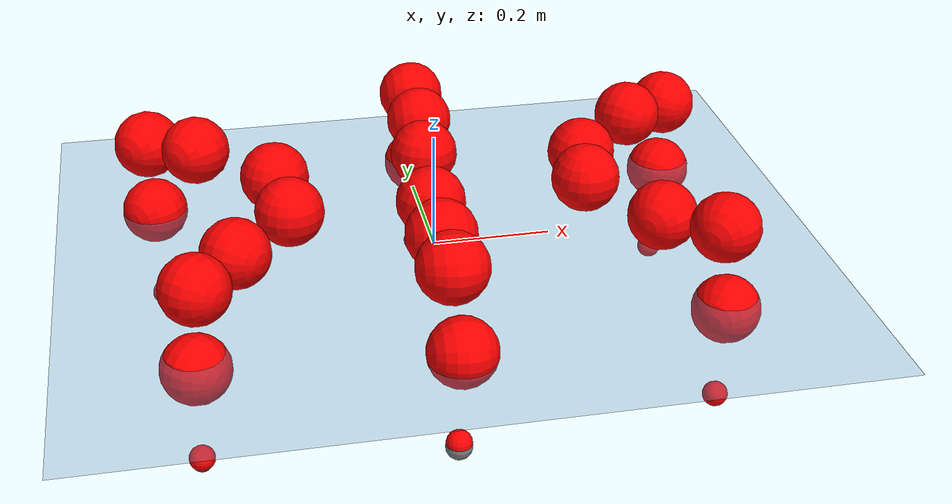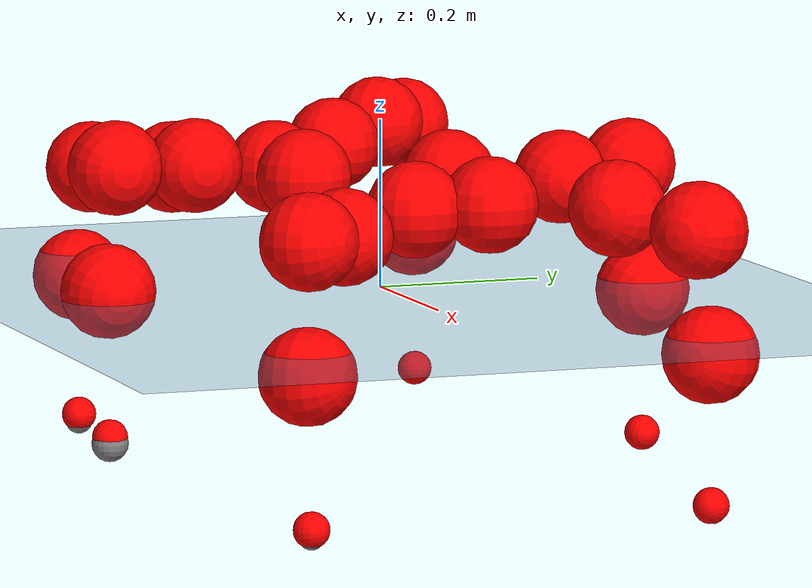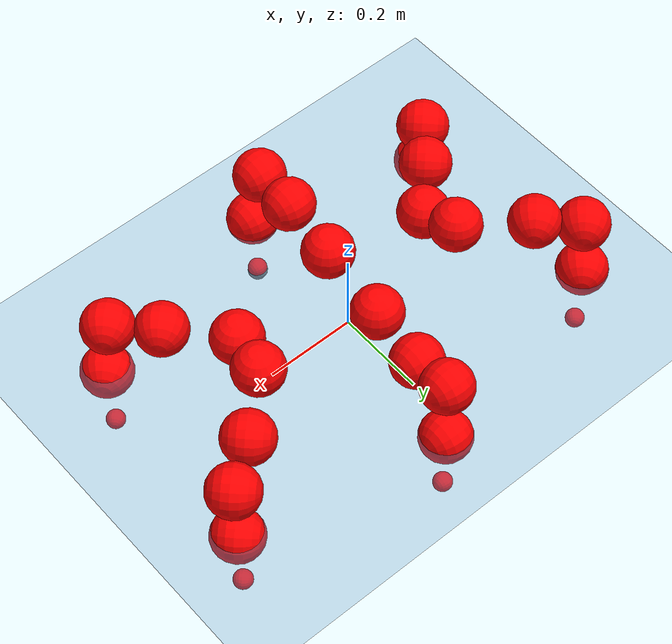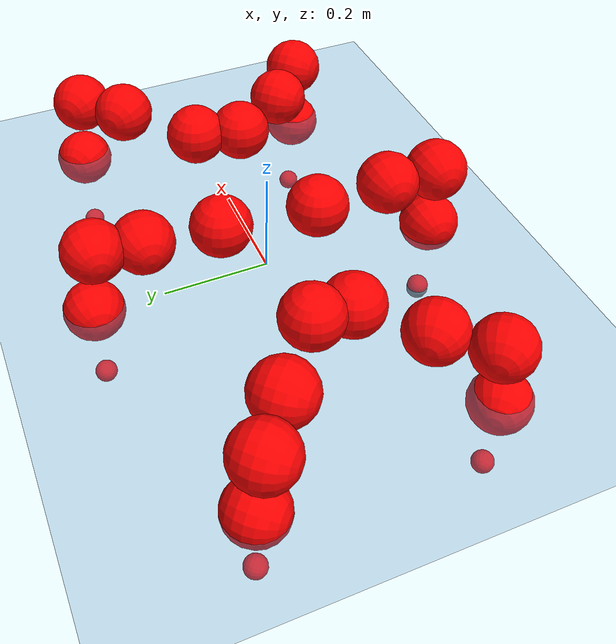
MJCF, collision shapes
<mujoco model="Golem">
  <compiler angle="radian" assetdir="assets" balanceinertia="true" inertiafromgeom="false"/>

  <option timestep="0.005" density="1.2" viscosity="2e-05"/>

  <size nkey="1"/>

  <visual>
    <quality shadowsize="8192"/>
    <map shadowclip="0.5"/>
  </visual>

  <default>
    <default class="/">
      <joint armature="0.01" damping="0.01" frictionloss="0.01"/>
      <geom contype="0" conaffinity="0" group="1" solref="-1000 -80"/>
      <site size="0.01 0.005 0.005" group="5"/>
      <general forcelimited="true" biastype="affine" gainprm="25" biasprm="0 -25 -0.5"/>
      <default class="visual">
        <geom type="mesh" group="2"/>
      </default>
      <default class="collision">
        <geom group="3"/>
      </default>
      <default class="foot">
        <geom size="0.01 0 0" condim="6" group="4" priority="1" solimp="0.015 1 0.01"/>
      </default>
      <default class="reward_collision_sphere">
        <geom group="5" rgba="1 0 0 1"/>
      </default>
    </default>
  </default>

  <asset>
    <texture type="skybox" colorspace="auto" name="//unnamed_texture_0" builtin="gradient" rgb1="0.95 0.95 0.95" rgb2="0.95 0.95 0.95" width="100" height="600"/>
    <texture type="2d" colorspace="auto" name="texplane" builtin="checker" rgb1="0.345 0.575 0.748" rgb2="0.345 0.575 0.748" markrgb="1 1 1" width="512" height="512"/>
    <material name="MatPlane" class="/" texture="texplane" texuniform="true" texrepeat="2 2" specular="0.9"/>
    <mesh name="body" class="/" file="body.stl" scale="0.001 0.001 0.001"/>
    <mesh name="coxa" class="/" file="coxa.stl" scale="0.001 0.001 0.001"/>
    <mesh name="femur" class="/" file="femur.stl" scale="0.001 0.001 0.001"/>
    <mesh name="tibia" class="/" file="tibia.stl" scale="0.001 0.001 0.001"/>
    <mesh name="tarsus" class="/" file="tarsus.stl" scale="0.001 0.001 0.001"/>
  </asset>

  <worldbody>
    <geom name="floor" class="/" size="100 100 0.125" type="plane" group="0" material="MatPlane"/>
    <light name="toplight_shadow" class="/" pos="0 0 5" dir="0.0990148 0.0990148 -0.990148" type="directional" ambient="0.04 0.04 0.04" diffuse="0.55 0.55 0.55" specular="0.12 0.12 0.12"/>
    <light name="toplight_fill" class="/" pos="0 0 5" dir="0.0990148 0.0990148 -0.990148" type="directional" castshadow="false" ambient="0.04 0.04 0.04" diffuse="0.3 0.3 0.3" specular="0.08 0.08 0.08"/>
    <body name="trunk" pos="-0.00549801 -0.00058061 0.0156186" quat="0.999988 0.000985557 0.00236095 -0.00415149">
      <inertial pos="0.000607775 -0.0134835 0.0138778" quat="0.998976 0.0358771 -0.0271185 -0.00484418" mass="8.15438" diaginertia="0.0937077 0.00672384 0.100194"/>
      <joint name="//unnamed_joint_0" type="free"/>
      <geom name="//unnamed_geom_1" class="/" pos="0 0 0.107644" quat="1 0 0 0" type="mesh" rgba="0.9 0.9 0.9 1" mesh="body"/>
      <site name="imu" class="/" pos="0.259368 -0.00122054 0.0969792" size="0.0141706"/>
      <camera name="track" class="/" pos="0 -1.87615 0" quat="0.707107 0.707107 0 0" mode="trackcom"/>
      <camera name="ego_camera" class="/" pos="0.212053 0 0.168194" quat="-0.5 -0.5 0.5 0.5"/>
      <body name="coxa_RR" pos="-0.275041 -0.0853726 0.0998825" quat="0.387083 -0.00717789 -0.00116089 -0.922016">
        <inertial pos="0.0167915 0.0113293 -0.00385721" quat="0.997405 -0.00833788 -0.0190539 -0.0689251" mass="0.519283" diaginertia="0.114407 0.00709215 0.167741"/>
        <joint name="coxa_joint_RR" class="/" pos="0 0 0" axis="0.0233656 0.000902846 -0.999727" range="-2.94435 3.02834" armature="0.0191284" damping="0" frictionloss="0.00392815"/>
        <geom name="//unnamed_geom_2" class="/" type="mesh" rgba="0.2 0.2 0.2 1" mesh="coxa"/>
        <geom name="//unnamed_geom_3" class="reward_collision_sphere" size="0.0566825" pos="-0.0489353 0 0"/>
        <body name="femur_RR" pos="0.0882303 0.00302436 -0.0102234" quat="0.50009 -0.50018 0.499798 0.499933">
          <inertial pos="0.00336335 0.00883377 -0.0155121" quat="0.999999 -0.000568477 0.000894309 -0.000463431" mass="0.543425" diaginertia="0.110029 0.00701817 0.15595"/>
          <joint name="femur_joint_RR" class="/" pos="0 0 0" axis="0.070415 -0.0162537 -0.997385" stiffness="0.0313382" range="-3.28582 3.16299" armature="0.020803" damping="0.014148" frictionloss="0.0195772"/>
          <geom name="//unnamed_geom_4" class="/" type="mesh" rgba="0.9 0.9 0.9 1" mesh="femur"/>
          <geom name="//unnamed_geom_5" class="reward_collision_sphere" size="0.0566825"/>
          <body name="tibia_RR" pos="0.00621727 -0.106515 0.0115143" quat="-0.000110434 1 0.000230924 -0.000129588">
            <inertial pos="0.00958052 -0.014606 0.015595" quat="0.997328 0.040687 0.0571631 0.0203512" mass="0.670105" diaginertia="0.152995 0.00795295 0.140739"/>
            <joint name="tibia_joint_RR" class="/" pos="0 0 0" axis="-0.0197857 -0.0060037 0.999786" range="-3.14981 3.39059" armature="0.015654" damping="0" frictionloss="0.0108997"/>
            <geom name="//unnamed_geom_6" class="/" type="mesh" rgba="0.2 0.2 0.2 1" mesh="tibia"/>
            <geom name="//unnamed_geom_7" class="reward_collision_sphere" size="0.0566825"/>
            <body name="tarsus_RR" pos="0.134971 0.0150623 -0.00474752" quat="0.999972 -0.000843218 -0.00734467 -0.00145888">
              <inertial pos="0.0900486 0.0165278 -0.00872013" quat="0.499384 0.523912 0.491154 0.484664" mass="0.586184" diaginertia="0.112371 0.00519056 0.11268"/>
              <joint name="tarsus_joint_RR" class="/" pos="0 0 0" axis="0.000179524 0.00303834 0.999995" stiffness="0.0268175" range="-3.1392 3.21676" armature="0.0141999" damping="0.072233" frictionloss="0.0178688"/>
              <geom name="//unnamed_geom_8" class="/" type="mesh" rgba="0.9 0.9 0.9 1" mesh="tarsus"/>
              <geom name="foot_1" class="foot" size="0.0168967" pos="0.182692 0 0" quat="0 -0.707107 0 0.707107"/>
              <geom name="//unnamed_geom_10" class="reward_collision_sphere" size="0.0566825"/>
              <geom name="//unnamed_geom_11" class="reward_collision_sphere" size="0.0212559" pos="0.175352 0 0"/>
              <site name="foot_1" class="foot" pos="0.182692 0 0" quat="0 -0.707107 0 0.707107" size="0.0141706"/>
            </body>
          </body>
        </body>
      </body>
      <body name="coxa_RM" pos="-0.0166087 -0.136619 0.118289" quat="0.706896 -0.000144841 -0.000212658 -0.707318">
        <inertial pos="-0.000396082 0.0112615 0.0175034" quat="0.999322 -0.0265377 -0.00163613 -0.0254861" mass="0.671435" diaginertia="0.155938 0.00998302 0.139328"/>
        <joint name="coxa_joint_RM" class="/" pos="0 0 0" axis="-0.00586812 0.00356527 -0.999976" range="-3.1356 3.24085" armature="0.0214213" damping="0.00781797" frictionloss="0.00603598"/>
        <geom name="//unnamed_geom_12" class="/" type="mesh" rgba="0.2 0.2 0.2 1" mesh="coxa"/>
        <geom name="//unnamed_geom_13" class="reward_collision_sphere" size="0.0566825" pos="-0.0489353 0 0"/>
        <body name="femur_RM" pos="0.0849304 -0.0079744 0.0178135" quat="0.500415 -0.499233 0.506172 0.494107">
          <inertial pos="0.0062334 0.0113913 -0.00234473" quat="0.996785 0.0277989 0.071587 -0.022837" mass="0.516258" diaginertia="0.09386 0.00811254 0.139187"/>
          <joint name="femur_joint_RM" class="/" pos="0 0 0" axis="-0.0302911 0.0255764 -0.999214" range="-2.85917 2.85731" armature="0.00174828" damping="0" frictionloss="0.0161442"/>
          <geom name="//unnamed_geom_14" class="/" type="mesh" rgba="0.9 0.9 0.9 1" mesh="femur"/>
          <geom name="//unnamed_geom_15" class="reward_collision_sphere" size="0.0566825"/>
          <body name="tibia_RM" pos="-0.00132225 -0.0975408 -0.000103966" quat="0.000187861 1 0.000208624 -0.00019781">
            <inertial pos="0.00803199 -0.00262396 0.015196" quat="0.99763 -0.00248693 -0.0383464 -0.0570715" mass="0.796471" diaginertia="0.121383 0.00851698 0.128338"/>
            <joint name="tibia_joint_RM" class="/" pos="0 0 0" axis="-0.00763789 -0.0269451 0.999608" range="-2.86472 3.42182" armature="0.0246124" damping="0.0632678" frictionloss="0.0198626"/>
            <geom name="//unnamed_geom_16" class="/" type="mesh" rgba="0.2 0.2 0.2 1" mesh="tibia"/>
            <geom name="//unnamed_geom_17" class="reward_collision_sphere" size="0.0566825"/>
            <body name="tarsus_RM" pos="0.143766 0.0138956 -0.0165424" quat="0.99999 -0.00166259 -0.000748729 -0.00417355">
              <inertial pos="0.107343 -0.00283402 0.00937215" quat="0.526715 0.515608 0.508976 0.444593" mass="0.576021" diaginertia="0.125192 0.00726564 0.14623"/>
              <joint name="tarsus_joint_RM" class="/" pos="0 0 0" axis="-0.0248092 0.0154225 0.999573" stiffness="0.0408604" range="-3.21126 2.78267" armature="0.013201" damping="0.0896069" frictionloss="0.0182083"/>
              <geom name="//unnamed_geom_18" class="/" type="mesh" rgba="0.9 0.9 0.9 1" mesh="tarsus"/>
              <geom name="foot_2" class="foot" size="0.0220075" pos="0.182692 0 0" quat="0 -0.707107 0 0.707107"/>
              <geom name="//unnamed_geom_20" class="reward_collision_sphere" size="0.0566825"/>
              <geom name="//unnamed_geom_21" class="reward_collision_sphere" size="0.0212559" pos="0.175352 0 0"/>
              <site name="foot_2" class="foot" pos="0.182692 0 0" quat="0 -0.707107 0 0.707107" size="0.0141706"/>
            </body>
          </body>
        </body>
      </body>
      <body name="coxa_RF" pos="0.287252 -0.0774478 0.113039" quat="0.925003 0.00287004 -0.00632268 -0.379897">
        <inertial pos="-0.0153414 0.0150048 0.00573117" quat="0.999502 0.00838036 0.0200098 0.0229069" mass="0.598797" diaginertia="0.0936212 0.00753198 0.127905"/>
        <joint name="coxa_joint_RF" class="/" pos="0 0 0" axis="-0.0559053 -0.0465279 -0.997351" stiffness="0.0228842" range="-3.13515 3.24045" armature="0.0154097" damping="0.0683989" frictionloss="0.0203561"/>
        <geom name="//unnamed_geom_22" class="/" type="mesh" rgba="0.2 0.2 0.2 1" mesh="coxa"/>
        <geom name="//unnamed_geom_23" class="reward_collision_sphere" size="0.0566825" pos="-0.0489353 0 0"/>
        <body name="femur_RF" pos="0.10327 -0.0178714 -0.0140881" quat="0.503801 -0.492605 0.500202 0.503312">
          <inertial pos="-0.00492003 0.00388513 0.00937418" quat="0.998528 -0.0114299 0.0510938 0.014184" mass="0.64253" diaginertia="0.129678 0.00766601 0.157043"/>
          <joint name="femur_joint_RF" class="/" pos="0 0 0" axis="0.0191715 -0.0320344 -0.999303" stiffness="0.0612362" range="-3.34001 2.92616" armature="0.0167691" damping="0" frictionloss="0.0159662"/>
          <geom name="//unnamed_geom_24" class="/" type="mesh" rgba="0.9 0.9 0.9 1" mesh="femur"/>
          <geom name="//unnamed_geom_25" class="reward_collision_sphere" size="0.0566825"/>
          <body name="tibia_RF" pos="-0.00845234 -0.105943 0.00871334" quat="-0.00277966 0.999996 0.00024388 0.000556869">
            <inertial pos="0.00314267 0.0134666 -0.0014094" quat="0.998977 0.0430161 -0.00355886 0.0134633" mass="0.611933" diaginertia="0.141896 0.00913946 0.13215"/>
            <joint name="tibia_joint_RF" class="/" pos="0 0 0" axis="-0.00869413 -0.00490685 0.99995" stiffness="0.0658286" range="-3.20929 3.41877" armature="0.0140866" damping="0.0980534" frictionloss="0.0137349"/>
            <geom name="//unnamed_geom_26" class="/" type="mesh" rgba="0.2 0.2 0.2 1" mesh="tibia"/>
            <geom name="//unnamed_geom_27" class="reward_collision_sphere" size="0.0566825"/>
            <body name="tarsus_RF" pos="0.150827 0.015095 -0.00195476" quat="0.999981 -0.00488744 -0.0014936 -0.00342042">
              <inertial pos="0.0931981 -0.00317232 -0.00673568" quat="0.500144 0.501326 0.500786 0.497737" mass="0.585162" diaginertia="0.0983631 0.00565351 0.12485"/>
              <joint name="tarsus_joint_RF" class="/" pos="0 0 0" axis="0.0265011 -0.00930989 0.999605" range="-3.10002 3.25886" armature="0.0102995" damping="0.0299768" frictionloss="0.0175927"/>
              <geom name="//unnamed_geom_28" class="/" type="mesh" rgba="0.9 0.9 0.9 1" mesh="tarsus"/>
              <geom name="foot_3" class="foot" size="0.0154352" pos="0.182692 0 0" quat="0 -0.707107 0 0.707107"/>
              <geom name="//unnamed_geom_30" class="reward_collision_sphere" size="0.0566825"/>
              <geom name="//unnamed_geom_31" class="reward_collision_sphere" size="0.0212559" pos="0.175352 0 0"/>
              <site name="foot_3" class="foot" pos="0.182692 0 0" quat="0 -0.707107 0 0.707107" size="0.0141706"/>
            </body>
          </body>
        </body>
      </body>
      <body name="coxa_LR" pos="-0.291254 0.0650514 0.121449" quat="0.382562 -7.52351e-05 -3.39304e-05 0.92393">
        <inertial pos="0.000850806 0.00830095 0.0129852" quat="0.998068 -0.00634872 0.0114394 0.0607345" mass="0.764301" diaginertia="0.14081 0.00730244 0.172385"/>
        <joint name="coxa_joint_LR" class="/" pos="0 0 0" axis="0.0603131 -0.0323857 -0.997654" range="-3.10934 3.24041" armature="0.00776649" damping="0" frictionloss="0.00481916"/>
        <geom name="//unnamed_geom_32" class="/" type="mesh" rgba="0.2 0.2 0.2 1" mesh="coxa"/>
        <geom name="//unnamed_geom_33" class="reward_collision_sphere" size="0.0566825" pos="-0.0489353 0 0"/>
        <body name="femur_LR" pos="0.110063 0.0162348 0.00735967" quat="0.495503 -0.504053 0.500415 0.499993">
          <inertial pos="0.00332044 0.00943375 0.0168051" quat="0.998695 0.0239807 -0.042869 -0.0139473" mass="0.589214" diaginertia="0.138153 0.00861393 0.16395"/>
          <joint name="femur_joint_LR" class="/" pos="0 0 0" axis="-0.0377104 -0.0760416 0.996391" range="-3.15158 3.14509" armature="0.00607105" damping="0" frictionloss="0.0174979"/>
          <geom name="//unnamed_geom_34" class="/" type="mesh" rgba="0.9 0.9 0.9 1" mesh="femur"/>
          <geom name="//unnamed_geom_35" class="reward_collision_sphere" size="0.0566825"/>
          <body name="tibia_LR" pos="0.0132843 -0.100363 0.0115742" quat="0.0010076 0.999998 -0.00149105 0.000400891">
            <inertial pos="0.00439507 -0.0146168 0.00303281" quat="0.999504 -0.000626995 -0.0226217 0.021908" mass="0.493361" diaginertia="0.118951 0.00639856 0.0955404"/>
            <joint name="tibia_joint_LR" class="/" pos="0 0 0" axis="-0.0792258 0.0400599 -0.996051" stiffness="0.0177963" range="-3.41443 3.4972" armature="0.00161308" damping="0.0274656" frictionloss="0.00561457"/>
            <geom name="//unnamed_geom_36" class="/" type="mesh" rgba="0.2 0.2 0.2 1" mesh="tibia"/>
            <geom name="//unnamed_geom_37" class="reward_collision_sphere" size="0.0566825"/>
            <body name="tarsus_LR" pos="0.138151 0.0082899 0.00836575" quat="0.999994 0.003013 -0.0015693 8.85366e-05">
              <inertial pos="0.0811911 0.00511404 0.017938" quat="0.498112 0.499238 0.500138 0.502502" mass="0.560055" diaginertia="0.100851 0.00801804 0.129748"/>
              <joint name="tarsus_joint_LR" class="/" pos="0 0 0" axis="0.00015017 -0.00255875 -0.999997" stiffness="0.0273197" range="-3.36501 3.35406" armature="0.0237063" damping="0" frictionloss="0.0145584"/>
              <geom name="//unnamed_geom_38" class="/" type="mesh" rgba="0.9 0.9 0.9 1" mesh="tarsus"/>
              <geom name="foot_4" class="foot" size="0.013573" pos="0.182692 0 0" quat="0.707107 0 -0.707107 0"/>
              <geom name="//unnamed_geom_40" class="reward_collision_sphere" size="0.0566825"/>
              <geom name="//unnamed_geom_41" class="reward_collision_sphere" size="0.0212559" pos="0.175352 0 0"/>
              <site name="foot_4" class="foot" pos="0.182692 0 0" quat="0.707107 0 -0.707107 0" size="0.0141706"/>
            </body>
          </body>
        </body>
      </body>
      <body name="coxa_LM" pos="0.00273567 0.136674 0.112728" quat="0.705302 0.00200232 -0.000541364 0.708904">
        <inertial pos="0.000710879 0.0153229 -0.0172182" quat="0.998795 -0.0173704 0.00467474 -0.0456715" mass="0.52757" diaginertia="0.137208 0.00779056 0.139911"/>
        <joint name="coxa_joint_LM" class="/" pos="0 0 0" axis="0.051314 0.04577 -0.997633" stiffness="0.0308352" range="-3.07217 3.30151" armature="0.0265787" damping="0" frictionloss="0.0144622"/>
        <geom name="//unnamed_geom_42" class="/" type="mesh" rgba="0.2 0.2 0.2 1" mesh="coxa"/>
        <geom name="//unnamed_geom_43" class="reward_collision_sphere" size="0.0566825" pos="-0.0489353 0 0"/>
        <body name="femur_LM" pos="0.088092 -0.0159387 -0.00497256" quat="0.499627 -0.500487 0.500454 0.499432">
          <inertial pos="0.0166075 -0.0112671 0.0115839" quat="0.999875 -0.00329435 -0.0136634 -0.00718315" mass="0.603027" diaginertia="0.151258 0.00753046 0.147729"/>
          <joint name="femur_joint_LM" class="/" pos="0 0 0" axis="0.0601387 -0.0502521 0.996924" range="-3.15157 3.14211" armature="0.0177786" damping="0.034783" frictionloss="0.00467551"/>
          <geom name="//unnamed_geom_44" class="/" type="mesh" rgba="0.9 0.9 0.9 1" mesh="femur"/>
          <geom name="//unnamed_geom_45" class="reward_collision_sphere" size="0.0566825"/>
          <body name="tibia_LM" pos="-0.0101907 -0.0870881 -0.000382072" quat="-0.00290287 0.999993 0.00172292 -0.00138204">
            <inertial pos="-0.00607397 -0.00228694 -0.0127" quat="0.99775 0.0137294 -0.0561491 -0.0339585" mass="0.726271" diaginertia="0.112505 0.00754949 0.167827"/>
            <joint name="tibia_joint_LM" class="/" pos="0 0 0" axis="0.0209177 -0.0258984 -0.999446" range="-3.22592 2.84241" armature="0.0109235" damping="0.0427485" frictionloss="0.00757772"/>
            <geom name="//unnamed_geom_46" class="/" type="mesh" rgba="0.2 0.2 0.2 1" mesh="tibia"/>
            <geom name="//unnamed_geom_47" class="reward_collision_sphere" size="0.0566825"/>
            <body name="tarsus_LM" pos="0.150314 0.0150064 0.00962828" quat="1 7.34242e-05 6.78309e-05 0.000108209">
              <inertial pos="0.0818961 0.00809216 0.00784867" quat="0.499457 0.4989 0.501175 0.500466" mass="0.559063" diaginertia="0.109958 0.0069446 0.117901"/>
              <joint name="tarsus_joint_LM" class="/" pos="0 0 0" axis="-0.000765097 -0.00144729 -0.999999" stiffness="0.0351707" range="-3.07657 3.19207" armature="0.0129389" damping="0.0346137" frictionloss="0.0191125"/>
              <geom name="//unnamed_geom_48" class="/" type="mesh" rgba="0.9 0.9 0.9 1" mesh="tarsus"/>
              <geom name="foot_5" class="foot" size="0.0137266" pos="0.182692 0 0" quat="0.707107 0 -0.707107 0"/>
              <geom name="//unnamed_geom_50" class="reward_collision_sphere" size="0.0566825"/>
              <geom name="//unnamed_geom_51" class="reward_collision_sphere" size="0.0212559" pos="0.175352 0 0"/>
              <site name="foot_5" class="foot" pos="0.182692 0 0" quat="0.707107 0 -0.707107 0" size="0.0141706"/>
            </body>
          </body>
        </body>
      </body>
      <body name="coxa_LF" pos="0.30268 0.0778519 0.116035" quat="0.924813 0.000530003 0.000239718 0.380422">
        <inertial pos="-0.0130624 0.00291417 -0.00770139" quat="0.996907 0.030795 -0.0656284 -0.030338" mass="0.551361" diaginertia="0.0902318 0.00668811 0.134592"/>
        <joint name="coxa_joint_LF" class="/" pos="0 0 0" axis="-0.002916 0.00272836 -0.999992" range="-3.23552 3.43588" armature="0.0209988" damping="0.0174112" frictionloss="0.0166863"/>
        <geom name="//unnamed_geom_52" class="/" type="mesh" rgba="0.2 0.2 0.2 1" mesh="coxa"/>
        <geom name="//unnamed_geom_53" class="reward_collision_sphere" size="0.0566825" pos="-0.0489353 0 0"/>
        <body name="femur_LF" pos="0.112362 -0.000450788 0.00608828" quat="0.502837 -0.49749 0.49988 0.499778">
          <inertial pos="0.0138704 -0.0126346 0.00153042" quat="0.999018 0.0337037 0.0123226 0.0259676" mass="0.625061" diaginertia="0.136038 0.00697247 0.135183"/>
          <joint name="femur_joint_LF" class="/" pos="0 0 0" axis="-0.0658014 0.0416726 0.996962" stiffness="0.0114653" range="-2.83793 3.07301" armature="0.0143293" damping="0.0615348" frictionloss="0.0145837"/>
          <geom name="//unnamed_geom_54" class="/" type="mesh" rgba="0.9 0.9 0.9 1" mesh="femur"/>
          <geom name="//unnamed_geom_55" class="reward_collision_sphere" size="0.0566825"/>
          <body name="tibia_LF" pos="0.0161176 -0.109643 -0.0151208" quat="-0.00471812 0.999981 -0.000639646 0.0040366">
            <inertial pos="0.0135932 -0.000289935 0.00484215" quat="0.996066 0.0158794 0.0519777 0.0699918" mass="0.451542" diaginertia="0.132297 0.00684712 0.147465"/>
            <joint name="tibia_joint_LF" class="/" pos="0 0 0" axis="-0.0215905 -0.016026 -0.999638" range="-3.13317 2.95174" armature="0.013025" damping="0.0735121" frictionloss="0.0179494"/>
            <geom name="//unnamed_geom_56" class="/" type="mesh" rgba="0.2 0.2 0.2 1" mesh="tibia"/>
            <geom name="//unnamed_geom_57" class="reward_collision_sphere" size="0.0566825"/>
            <body name="tarsus_LF" pos="0.143162 0.0136209 -0.00102689" quat="0.999997 -0.000333539 -0.00111338 0.00210359">
              <inertial pos="0.108817 0.00628429 0.0110003" quat="0.495749 0.521791 0.504726 0.476674" mass="0.810511" diaginertia="0.142238 0.00867555 0.168592"/>
              <joint name="tarsus_joint_LF" class="/" pos="0 0 0" axis="-0.0122089 -0.0405062 -0.999105" stiffness="0.0539959" range="-3.0032 2.93525" armature="0.0214954" damping="0" frictionloss="0.0124538"/>
              <geom name="//unnamed_geom_58" class="/" type="mesh" rgba="0.9 0.9 0.9 1" mesh="tarsus"/>
              <geom name="foot_6" class="foot" size="0.00768832" pos="0.182692 0 0" quat="0.707107 0 -0.707107 0"/>
              <geom name="//unnamed_geom_60" class="reward_collision_sphere" size="0.0566825"/>
              <geom name="//unnamed_geom_61" class="reward_collision_sphere" size="0.0212559" pos="0.175352 0 0"/>
              <site name="foot_6" class="foot" pos="0.182692 0 0" quat="0.707107 0 -0.707107 0" size="0.0141706"/>
            </body>
          </body>
        </body>
      </body>
    </body>
  </worldbody>

  <contact>
    <pair class="/" geom1="floor" geom2="foot_1" name="//unnamed_contact_0"/>
    <pair class="/" geom1="floor" geom2="foot_2" name="//unnamed_contact_1"/>
    <pair class="/" geom1="floor" geom2="foot_3" name="//unnamed_contact_2"/>
    <pair class="/" geom1="floor" geom2="foot_4" name="//unnamed_contact_3"/>
    <pair class="/" geom1="floor" geom2="foot_5" name="//unnamed_contact_4"/>
    <pair class="/" geom1="floor" geom2="foot_6" name="//unnamed_contact_5"/>
  </contact>

  <actuator>
    <general name="coxa_joint_RR" class="/" joint="coxa_joint_RR" forcerange="-11.6578 11.6578" gainprm="30.0876" biasprm="0 -30.0876 -0.710156"/>
    <general name="femur_joint_RR" class="/" joint="femur_joint_RR" forcerange="-5.88573 5.88573" gainprm="30.0876" biasprm="0 -30.0876 -0.710156"/>
    <general name="tibia_joint_RR" class="/" joint="tibia_joint_RR" forcerange="-15.9742 15.9742" gainprm="30.0876" biasprm="0 -30.0876 -0.710156"/>
    <general name="tarsus_joint_RR" class="/" joint="tarsus_joint_RR" forcerange="-6.97264 6.97264" gainprm="30.0876" biasprm="0 -30.0876 -0.710156"/>
    <general name="coxa_joint_RM" class="/" joint="coxa_joint_RM" forcerange="-3.41492 3.41492" gainprm="30.0876" biasprm="0 -30.0876 -0.710156"/>
    <general name="femur_joint_RM" class="/" joint="femur_joint_RM" forcerange="-11.5363 11.5363" gainprm="30.0876" biasprm="0 -30.0876 -0.710156"/>
    <general name="tibia_joint_RM" class="/" joint="tibia_joint_RM" forcerange="-6.88203 6.88203" gainprm="30.0876" biasprm="0 -30.0876 -0.710156"/>
    <general name="tarsus_joint_RM" class="/" joint="tarsus_joint_RM" forcerange="-16.0011 16.0011" gainprm="30.0876" biasprm="0 -30.0876 -0.710156"/>
    <general name="coxa_joint_RF" class="/" joint="coxa_joint_RF" forcerange="-4.98772 4.98772" gainprm="30.0876" biasprm="0 -30.0876 -0.710156"/>
    <general name="femur_joint_RF" class="/" joint="femur_joint_RF" forcerange="-10.2549 10.2549" gainprm="30.0876" biasprm="0 -30.0876 -0.710156"/>
    <general name="tibia_joint_RF" class="/" joint="tibia_joint_RF" forcerange="-11.1311 11.1311" gainprm="30.0876" biasprm="0 -30.0876 -0.710156"/>
    <general name="tarsus_joint_RF" class="/" joint="tarsus_joint_RF" forcerange="-10.4363 10.4363" gainprm="30.0876" biasprm="0 -30.0876 -0.710156"/>
    <general name="coxa_joint_LR" class="/" joint="coxa_joint_LR" forcerange="-4.29944 4.29944" gainprm="30.0876" biasprm="0 -30.0876 -0.710156"/>
    <general name="femur_joint_LR" class="/" joint="femur_joint_LR" forcerange="-10.0862 10.0862" gainprm="30.0876" biasprm="0 -30.0876 -0.710156"/>
    <general name="tibia_joint_LR" class="/" joint="tibia_joint_LR" forcerange="-5.37689 5.37689" gainprm="30.0876" biasprm="0 -30.0876 -0.710156"/>
    <general name="tarsus_joint_LR" class="/" joint="tarsus_joint_LR" forcerange="-4.04318 4.04318" gainprm="30.0876" biasprm="0 -30.0876 -0.710156"/>
    <general name="coxa_joint_LM" class="/" joint="coxa_joint_LM" forcerange="-15.8784 15.8784" gainprm="30.0876" biasprm="0 -30.0876 -0.710156"/>
    <general name="femur_joint_LM" class="/" joint="femur_joint_LM" forcerange="-7.39998 7.39998" gainprm="30.0876" biasprm="0 -30.0876 -0.710156"/>
    <general name="tibia_joint_LM" class="/" joint="tibia_joint_LM" forcerange="-4.45737 4.45737" gainprm="30.0876" biasprm="0 -30.0876 -0.710156"/>
    <general name="tarsus_joint_LM" class="/" joint="tarsus_joint_LM" forcerange="-3.55386 3.55386" gainprm="30.0876" biasprm="0 -30.0876 -0.710156"/>
    <general name="coxa_joint_LF" class="/" joint="coxa_joint_LF" forcerange="-15.2209 15.2209" gainprm="30.0876" biasprm="0 -30.0876 -0.710156"/>
    <general name="femur_joint_LF" class="/" joint="femur_joint_LF" forcerange="-15.11 15.11" gainprm="30.0876" biasprm="0 -30.0876 -0.710156"/>
    <general name="tibia_joint_LF" class="/" joint="tibia_joint_LF" forcerange="-13.3627 13.3627" gainprm="30.0876" biasprm="0 -30.0876 -0.710156"/>
    <general name="tarsus_joint_LF" class="/" joint="tarsus_joint_LF" forcerange="-14.1033 14.1033" gainprm="30.0876" biasprm="0 -30.0876 -0.710156"/>
  </actuator>

  <sensor>
    <gyro site="imu" name="imu_angular_velocity"/>
    <velocimeter site="imu" name="imu_linear_velocity"/>
    <framelinvel objtype="site" objname="foot_1" name="foot_1_global_linear_velocity"/>
    <framelinvel objtype="site" objname="foot_2" name="foot_2_global_linear_velocity"/>
    <framelinvel objtype="site" objname="foot_3" name="foot_3_global_linear_velocity"/>
    <framelinvel objtype="site" objname="foot_4" name="foot_4_global_linear_velocity"/>
    <framelinvel objtype="site" objname="foot_5" name="foot_5_global_linear_velocity"/>
    <framelinvel objtype="site" objname="foot_6" name="foot_6_global_linear_velocity"/>
  </sensor>

  <keyframe>
    <key name="home" qpos="0 0 0.1457 1 0 0 0 0 0 0 0 0 0 0 0 0 0 0 0 0 0 0 0 0 0 0 0 0 0 0 0"/>
  </keyframe>
</mujoco>
